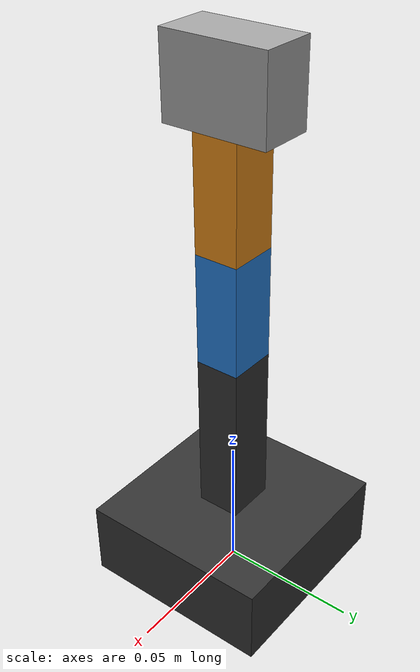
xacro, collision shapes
<?xml version="1.0"?>

<robot name="devotics_arm_v0" xmlns:xacro="http://www.ros.org/wiki/xacro">

  <!-- NOTE: ${pi} is a built-in xacro constant — no need to redefine it -->

  <!-- BASE DIMENSIONS  — from CAD/STL (reliable)                  -->
  <!-- E: Base maximum width = 72.24 mm  (CAD) -->
  <xacro:property name="base_width"       value="0.07224"/>
  <!-- Base depth (Y footprint) = 70.58 mm  (CAD) -->
  <xacro:property name="base_depth"       value="0.07058"/>
  <!-- Base STL height = 28.59 mm  (CAD) — this is NOT dim_F -->
  <xacro:property name="base_stl_height"  value="0.02859"/>

  <!-- Gripper housing bounding box — from CAD/STL -->
  <xacro:property name="gripper_size_x"   value="0.01960"/>  <!-- 19.60 mm -->
  <xacro:property name="gripper_size_y"   value="0.03735"/>  <!-- 37.35 mm -->
  <xacro:property name="gripper_size_z"   value="0.02763"/>  <!-- 27.63 mm -->

  <!-- Visual cross-section for arm links (approximate, display only) -->
  <xacro:property name="arm_w"            value="0.018"/>
  <xacro:property name="arm_d"            value="0.016"/>

  <!-- KINEMATIC DIMENSIONS — PENDING PHYSICAL MEASUREMENT          -->
  <!-- !! DO NOT CHANGE THESE VALUES WITHOUT MEASURING !!           -->
  <!-- Replace each PLACEHOLDER after measuring the physical robot. -->
  <!-- Measure center-of-servo-shaft to center-of-servo-shaft.     -->

  <!--
    F = table surface → J1 rotation axis  (vertical height, 3.0 cm)
  -->
  <xacro:property name="dim_F"  value="0.030"/>  <!-- Physically verified: 3.0 cm -->

  <!--
    A = J1 rotation axis → J2 (shoulder) axis  (vertical, 6.02 cm to upper housing pivot)
  -->
  <xacro:property name="dim_A"  value="0.0602"/>  <!-- Matched to CAD housing upper pivot -->

  <!--
    B = J2 (shoulder) axis → J3 (elbow) axis  (along upper arm, 4.0 cm)
  -->
  <xacro:property name="dim_B"  value="0.040"/>  <!-- Physically verified: 4.0 cm -->

  <!--
    C = J3 (elbow) axis → J4 / gripper reference (along forearm, 4.0 cm)
  -->
  <xacro:property name="dim_C"  value="0.040"/>  <!-- Physically verified: 4.0 cm -->

  <!--
    D = J4 / gripper axis → fingertip  (gripper effective length, 4.5 cm)
  -->
  <xacro:property name="dim_D"  value="0.045"/>  <!-- Physically verified: 4.5 cm (Total upright height = 18.0 cm) -->

  <!-- JOINT LIMITS                                                 -->
  <!-- Source: ESP32 firmware software limits                       -->
  <!-- Convention: ROS 0 rad = servo 90° (home)                    -->
  <!--   ros_rad = (servo_deg - 90) * pi / 180                     -->
  <!-- These limits are configurable — adjust in calibration yaml. -->

  <!-- J1 base:     servo 30–150°  → ROS ±60°  = ±1.047 rad -->
  <xacro:property name="j1_lower"  value="${-60.0 * pi / 180.0}"/>
  <xacro:property name="j1_upper"  value="${ 60.0 * pi / 180.0}"/>

  <!-- J2 shoulder: servo 60–175°  → ROS -30° to +85° = -0.524 to +1.484 rad -->
  <xacro:property name="j2_lower"  value="${-30.0 * pi / 180.0}"/>
  <xacro:property name="j2_upper"  value="${ 85.0 * pi / 180.0}"/>

  <!-- J3 elbow:    servo 60–175°  → ROS -30° to +85° = -0.524 to +1.484 rad -->
  <xacro:property name="j3_lower"  value="${-30.0 * pi / 180.0}"/>
  <xacro:property name="j3_upper"  value="${ 85.0 * pi / 180.0}"/>

  <!-- J4 gripper:  servo 60–110°  → ROS -30° to +20° = -0.524 to +0.349 rad -->
  <!-- negative = closes (servo < 90°), positive = opens (servo > 90°)        -->
  <xacro:property name="j4_lower"  value="${-30.0 * pi / 180.0}"/>
  <xacro:property name="j4_upper"  value="${ 20.0 * pi / 180.0}"/>

  <!-- MATERIALS                                                    -->
  <material name="v0_dark_gray">
    <color rgba="0.20 0.20 0.20 1"/>
  </material>
  <material name="v0_dark_blue">
    <color rgba="0.10 0.25 0.65 1"/>
  </material>
  <material name="v0_mid_blue">
    <color rgba="0.15 0.50 0.85 1"/>
  </material>
  <material name="v0_orange">
    <color rgba="0.90 0.55 0.10 1"/>
  </material>
  <material name="v0_light_gray">
    <color rgba="0.65 0.65 0.65 1"/>
  </material>

  <!-- WORLD ANCHOR                                                 -->
  <!-- Fixes the robot base to the ground/table in RViz and sim.   -->
  <link name="world"/>

  <joint name="world_fixed" type="fixed">
    <parent link="world"/>
    <child  link="base_link"/>
    <origin xyz="0 0 0" rpy="0 0 0"/>
  </joint>

  <!-- BASE LINK                                                    -->
  <!-- The fixed base that sits on the table.                       -->
  <!-- Origin: table surface, center of base footprint.            -->
  <!-- Visual: CAD bounding box (72.24 × 70.58 × 28.59 mm).       -->
  <!-- BASE LINK                                                    -->
  <!-- Fixed base that sits on the table surface (Z=0).            -->
  <link name="base_link">
    <visual>
      <origin xyz="0 0 ${base_stl_height / 2.0}" rpy="0 0 0"/>
      <geometry>
        <box size="${base_width} ${base_depth} ${base_stl_height}"/>
      </geometry>
      <material name="v0_dark_gray"/>
    </visual>
    <collision>
      <origin xyz="0 0 ${base_stl_height / 2.0}" rpy="0 0 0"/>
      <geometry>
        <box size="${base_width} ${base_depth} ${base_stl_height}"/>
      </geometry>
    </collision>
  </link>

  <!-- J1 — BASE ROTATION JOINT                                     -->
  <joint name="base_joint" type="revolute">
    <parent link="base_link"/>
    <child  link="base_rotating_link"/>
    <origin xyz="0 0 ${dim_F}" rpy="0 0 0"/>
    <axis xyz="0 0 1"/>
    <limit lower="${j1_lower}" upper="${j1_upper}" effort="1.5" velocity="1.8"/>
    <dynamics damping="0.01" friction="0.01"/>
  </joint>

  <!-- BASE ROTATING LINK                                           -->
  <link name="base_rotating_link">
    <!-- Servo horn mounting plate at base (flat on base platform) -->
    <visual>
      <origin xyz="0.05828 0 -0.04365" rpy="0 0 -1.5708"/>
      <geometry>
        <mesh filename="package://devotics_arm_description/meshes/v0/base/horn_base.stl" scale="0.001 0.001 0.001"/>
      </geometry>
      <material name="v0_dark_gray"/>
    </visual>
    <!-- Left housing upright (100% vertical along +Z, seated flush on base) -->
    <visual>
      <origin xyz="0.08918 0 0.00592" rpy="0.7944 0 -1.5708"/>
      <geometry>
        <mesh filename="package://devotics_arm_description/meshes/v0/base/housing_left.stl" scale="0.001 0.001 0.001"/>
      </geometry>
      <material name="v0_dark_blue"/>
    </visual>
    <!-- Right housing upright (100% vertical along +Z, seated flush on base) -->
    <visual>
      <origin xyz="0.08918 0 0.00592" rpy="0.7944 0 -1.5708"/>
      <geometry>
        <mesh filename="package://devotics_arm_description/meshes/v0/base/housing_right.stl" scale="0.001 0.001 0.001"/>
      </geometry>
      <material name="v0_dark_blue"/>
    </visual>
    <!-- Lower Left Bracket (exact CAD assembly match) -->
    <visual>
      <origin xyz="0.08918 0 0.00592" rpy="0.7944 0 -1.5708"/>
      <geometry>
        <mesh filename="package://devotics_arm_description/meshes/v0/arm/bracket_lower_left.stl" scale="0.001 0.001 0.001"/>
      </geometry>
      <material name="v0_light_gray"/>
    </visual>
    <!-- Lower Right Bracket (exact CAD assembly match) -->
    <visual>
      <origin xyz="0.08918 0 0.00592" rpy="0.7944 0 -1.5708"/>
      <geometry>
        <mesh filename="package://devotics_arm_description/meshes/v0/arm/bracket_lower_right.stl" scale="0.001 0.001 0.001"/>
      </geometry>
      <material name="v0_light_gray"/>
    </visual>
    <!-- Upper Left Bracket (exact CAD assembly match) -->
    <visual>
      <origin xyz="0.08918 0 0.00592" rpy="0.7944 0 -1.5708"/>
      <geometry>
        <mesh filename="package://devotics_arm_description/meshes/v0/arm/bracket_upper_left.stl" scale="0.001 0.001 0.001"/>
      </geometry>
      <material name="v0_light_gray"/>
    </visual>
    <!-- Upper Right Bracket (exact CAD assembly match) -->
    <visual>
      <origin xyz="0.08918 0 0.00592" rpy="0.7944 0 -1.5708"/>
      <geometry>
        <mesh filename="package://devotics_arm_description/meshes/v0/arm/bracket_upper_right.stl" scale="0.001 0.001 0.001"/>
      </geometry>
      <material name="v0_light_gray"/>
    </visual>
    <collision>
      <origin xyz="0 0 ${dim_A / 2.0}" rpy="0 0 0"/>
      <geometry>
        <box size="${arm_w} ${arm_d} ${dim_A}"/>
      </geometry>
    </collision>
  </link>

  <!-- J2 — SHOULDER JOINT                                          -->
  <joint name="shoulder_joint" type="revolute">
    <parent link="base_rotating_link"/>
    <child  link="upper_arm_link"/>
    <origin xyz="0 0 ${dim_A}" rpy="0 0 0"/>
    <axis xyz="0 1 0"/>
    <limit lower="${j2_lower}" upper="${j2_upper}" effort="1.5" velocity="1.8"/>
    <dynamics damping="0.01" friction="0.01"/>
  </joint>

  <!-- UPPER ARM LINK                                               -->
  <link name="upper_arm_link">
    <visual>
      <origin xyz="0 0 ${dim_B / 2.0}" rpy="0 0 0"/>
      <geometry>
        <box size="${arm_w} ${arm_d} ${dim_B}"/>
      </geometry>
      <material name="v0_mid_blue"/>
    </visual>
    <collision>
      <origin xyz="0 0 ${dim_B / 2.0}" rpy="0 0 0"/>
      <geometry>
        <box size="${arm_w} ${arm_d} ${dim_B}"/>
      </geometry>
    </collision>
  </link>

  <!-- J3 — ELBOW JOINT                                             -->
  <joint name="elbow_joint" type="revolute">
    <parent link="upper_arm_link"/>
    <child  link="forearm_link"/>
    <origin xyz="0 0 ${dim_B}" rpy="0 0 0"/>
    <axis xyz="0 1 0"/>
    <limit lower="${j3_lower}" upper="${j3_upper}" effort="1.5" velocity="1.8"/>
    <dynamics damping="0.01" friction="0.01"/>
  </joint>

  <!-- FOREARM LINK                                                 -->
  <link name="forearm_link">
    <visual>
      <origin xyz="0 0 ${dim_C / 2.0}" rpy="0 0 0"/>
      <geometry>
        <box size="${arm_w} ${arm_d} ${dim_C}"/>
      </geometry>
      <material name="v0_orange"/>
    </visual>
    <collision>
      <origin xyz="0 0 ${dim_C / 2.0}" rpy="0 0 0"/>
      <geometry>
        <box size="${arm_w} ${arm_d} ${dim_C}"/>
      </geometry>
    </collision>
  </link>

  <!-- J4 — GRIPPER JOINT                                           -->
  <joint name="gripper_joint" type="revolute">
    <parent link="forearm_link"/>
    <child  link="gripper_link"/>
    <origin xyz="0 0 ${dim_C}" rpy="0 0 0"/>
    <axis xyz="0 1 0"/>
    <limit lower="${j4_lower}" upper="${j4_upper}" effort="0.5" velocity="1.5"/>
    <dynamics damping="0.005" friction="0.005"/>
  </joint>

  <!-- GRIPPER LINK                                                 -->
  <link name="gripper_link">
    <visual>
      <origin xyz="0 0 ${gripper_size_z / 2.0}" rpy="0 0 0"/>
      <geometry>
        <box size="${gripper_size_x} ${gripper_size_y} ${gripper_size_z}"/>
      </geometry>
      <material name="v0_light_gray"/>
    </visual>
    <collision>
      <origin xyz="0 0 ${gripper_size_z / 2.0}" rpy="0 0 0"/>
      <geometry>
        <box size="${gripper_size_x} ${gripper_size_y} ${gripper_size_z}"/>
      </geometry>
    </collision>
  </link>

  <!-- TOOL CENTER POINT (tool0)                                    -->
  <link name="tool0"/>

  <joint name="tool0_joint" type="fixed">
    <parent link="gripper_link"/>
    <child  link="tool0"/>
    <origin xyz="0 0 ${dim_D}" rpy="0 0 0"/>
  </joint>

</robot>
